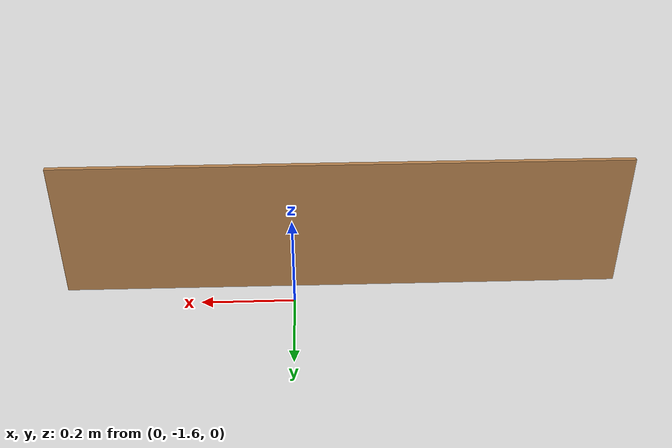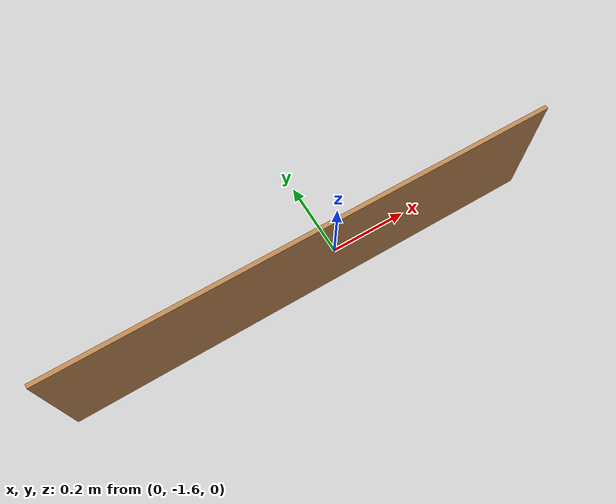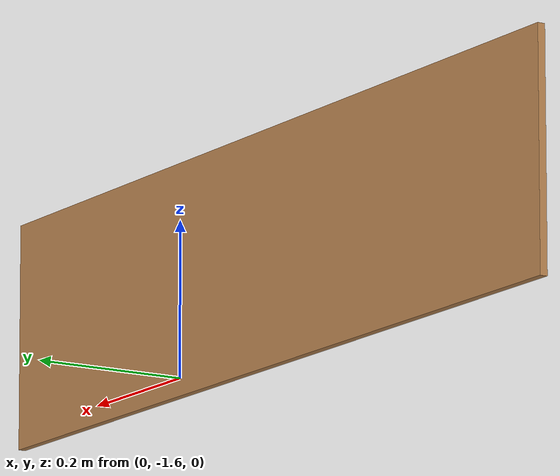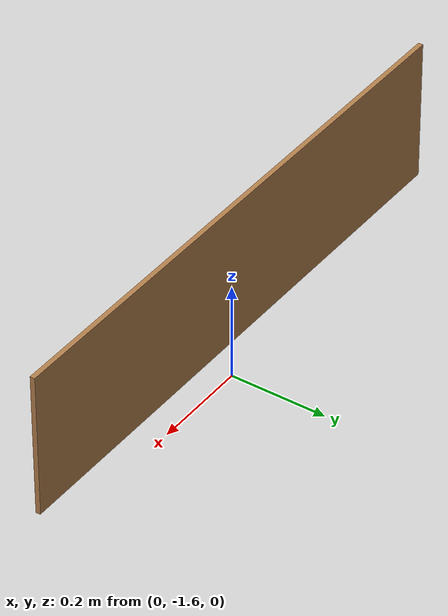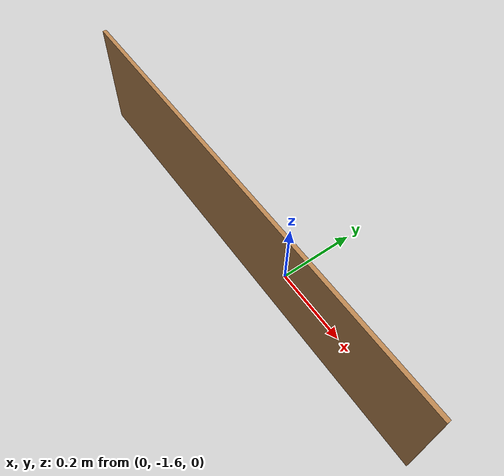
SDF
<?xml version='1.0'?>
<sdf version='1.7'>
  <model name='Wall_120'>
    <pose>-0.105 -0.8325 0 0 -0 0</pose>
    <link name='Wall_0'>
      <collision name='Wall_0_Collision'>
        <geometry>
          <box>
            <size>1.2 0.01 0.3</size>
          </box>
        </geometry>
        <pose>0 0 0.15 0 -0 0</pose>
      </collision>
      <visual name='Wall_0_Visual'>
        <pose>0 0 0.15 0 -0 0</pose>
        <geometry>
          <box>
            <size>1.2 0.01 0.3</size>
          </box>
        </geometry>
        <material>
          <script>
            <uri>file://media/materials/scripts/gazebo.material</uri>
            <name>Gazebo/Wood</name>
          </script>
          <ambient>1 1 1 1</ambient>
        </material>
        <meta>
          <layer>0</layer>
        </meta>
      </visual>
      <pose>0 -0.8275 0 0 -0 3.14159</pose>
    </link>
    <static>1</static>
  </model>
</sdf>
